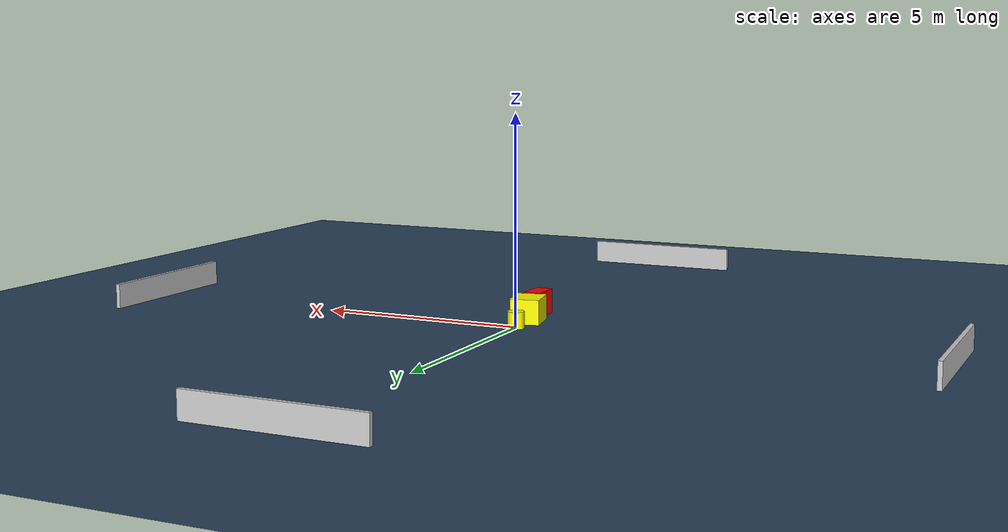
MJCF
<?xml version="1.0" ?>
<mujoco model="generated_environment">
  <option timestep="0.01" integrator="RK4" cone="elliptic"/>
  <default>
    <geom density="1"/>
  </default>
  <asset>
    <texture builtin="gradient" height="3072" name="skybox" rgb1="0.3 0.5 0.7" rgb2="0 0 0" type="skybox" width="512"/>
    <texture builtin="checker" height="300" name="groundplane" rgb1="0.2 0.3 0.4" rgb2="0.1 0.2 0.3" type="2d" width="300"/>
    <material name="groundplane" reflectance="0.2" texrepeat="5 5" texture="groundplane"/>
  </asset>
  <worldbody>
    <light dir="0 0 -1" directional="true" pos="0 0 1.5"/>
    <geom condim="3" friction="0.5 0.005 0.001" material="groundplane" name="floor" pos="0 0 0" size="0 0 0.05" type="plane"/>
    <body name="walls">
      <geom name="wall_1" condim="4" pos="-10.0 0.0 0.3" rgba="0.800000011920929 0.800000011920929 0.800000011920929 1.0" size="0.05 2.0 0.3" type="box"/>
      <geom name="wall_2" condim="4" pos="10.0 0.0 0.3" rgba="0.800000011920929 0.800000011920929 0.800000011920929 1.0" size="0.05 2.0 0.3" type="box"/>
      <geom name="wall_3" condim="4" pos="0.0 -10.0 0.3" rgba="0.800000011920929 0.800000011920929 0.800000011920929 1.0" size="2.0 0.05 0.3" type="box"/>
      <geom name="wall_4" condim="4" pos="0.0 10.0 0.3" rgba="0.800000011920929 0.800000011920929 0.800000011920929 1.0" size="2.0 0.05 0.3" type="box"/>
    </body>
    <body name="robot">
      <joint name="joint_x" type="slide" pos="0 0 0" axis="1 0 0"/>
      <joint name="joint_y" type="slide" pos="0 0 0" axis="0 1 0"/>
      <geom name="robot" type="cylinder" pos="0.0 0.0 0.2" size="0.2 0.2 0.0" mass="5.0" friction="1.0 0.005 0.0001" condim="4" rgba="1.0 1.0 0.0 1.0"/>
    </body>
    <body name="obstacle_1_movable">
      <geom name="obstacle_1_movable" condim="4" pos="0.05782148691398544 -0.8264121022801636 0.3" euler="0 0 281.08334200457233" friction="0.0 0.005 0.001" rgba="1.0 1.0 0.0 1.0" size="0.42164139706196646 0.3524757327205008 0.3" type="box" mass="0.1"/>
      <joint type="free"/>
    </body>
    <body name="obstacle_2_static">
      <geom name="obstacle_2_static" condim="4" pos="0.1939274390072262 -1.7031469156309857 0.3" euler="0 0 88.35023775785419" friction="0.0 0.005 0.001" rgba="1.0 0.0 0.0 1.0" size="0.35635417223611543 0.20592337909139058 0.3" type="box"/>
    </body>
  </worldbody>
  <actuator>
    <motor name="actuator_x" joint="joint_x" gear="1" ctrlrange="-1 1"/>
    <motor name="actuator_y" joint="joint_y" gear="1" ctrlrange="-1 1"/>
  </actuator>
</mujoco>
